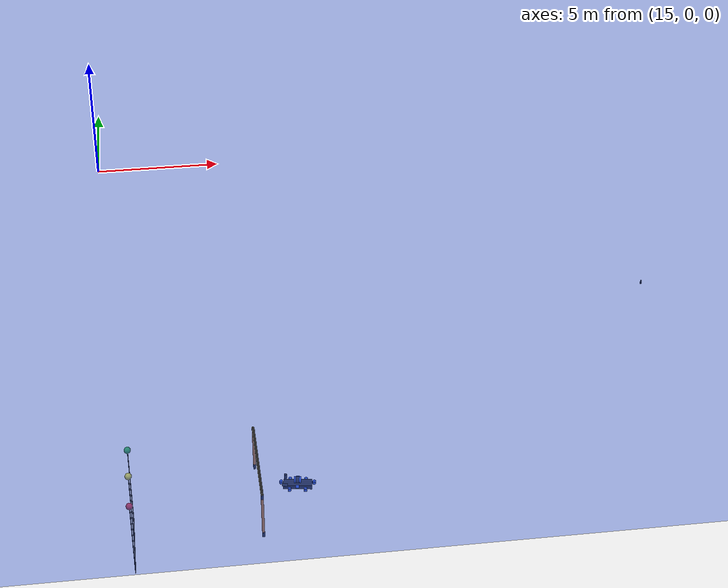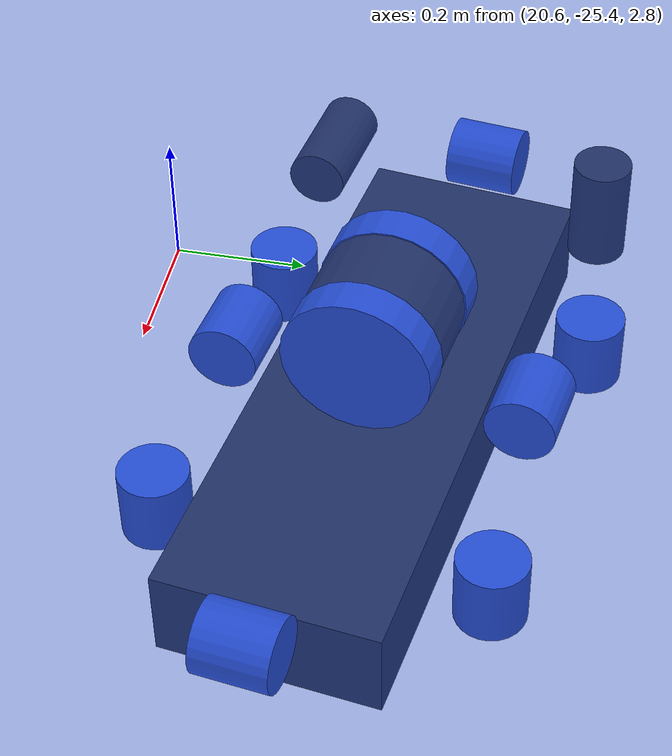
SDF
<sdf version="1.5">
 <world name="default">
  <scene>
   <ambient>0.25 0.3 1 1</ambient>
   <grid>0</grid>
   <background>0.25 0.3 1 1</background>
   <shadows>1</shadows>
  </scene>
  <light type="directional" name="sun0">
   <pose>8 -21 10 0 0.8 -2.8</pose>
   <diffuse>0.8 0.8 0.8 1</diffuse>
   <specular>0.2 0.2 0.2 1</specular>
   <attenuation>
    <range>1000</range>
    <constant>0.9</constant>
    <linear>0.01</linear>
    <quadratic>0.001</quadratic>
   </attenuation>
   <direction>-0.5 0.1 -0.9</direction>
  </light>
  <light type="directional" name="sun1">
   <pose>8 -20 10 0 0.8 0</pose>
   <diffuse>0.8 0.8 0.8 1</diffuse>
   <specular>0.2 0.2 0.2 1</specular>
   <attenuation>
    <range>1000</range>
    <constant>0.9</constant>
    <linear>0.01</linear>
    <quadratic>0.001</quadratic>
   </attenuation>
   <direction>-0.5 0.1 -0.9</direction>
  </light>
  <light type="directional" name="sun2">
   <pose>8 -19 10 0 0 0</pose>
   <diffuse>0.8 0.8 0.8 1</diffuse>
   <specular>0.2 0.2 0.2 1</specular>
   <attenuation>
    <range>1000</range>
    <constant>0.9</constant>
    <linear>0.01</linear>
    <quadratic>0.001</quadratic>
   </attenuation>
   <direction>-0.5 0.1 -0.9</direction>
  </light>
  <light type="directional" name="sun3">
   <pose>8 -19 10 1.75 0 0</pose>
   <diffuse>0.8 0.8 0.8 1</diffuse>
   <specular>0.2 0.2 0.2 1</specular>
   <attenuation>
    <range>1000</range>
    <constant>0.9</constant>
    <linear>0.01</linear>
    <quadratic>0.001</quadratic>
   </attenuation>
   <direction>-0.5 0.1 -0.9</direction>
  </light>
  <light type="directional" name="sun4">
   <pose>8 -19 10 1.75 0 2.9</pose>
   <diffuse>0.8 0.8 0.8 1</diffuse>
   <specular>0.2 0.2 0.2 1</specular>
   <attenuation>
    <range>1000</range>
    <constant>0.9</constant>
    <linear>0.01</linear>
    <quadratic>0.001</quadratic>
   </attenuation>
   <direction>-0.5 0.1 -0.9</direction>
  </light>
  <model name="ceiling_plane">
   <static>true</static>
   <pose>0 0 4.49 0 0 0</pose>
   <link name="link">
    <visual name="visual">
     <cast_shadows>false</cast_shadows>
     <geometry><box><size>90 60 .001</size></box></geometry>
     <material>
      <script><uri>file://media/materials/scripts/gazebo.material</uri><name>Gazebo/BlueTransparent</name></script>
     </material>
     <transparency>0.6</transparency>
    </visual>
   </link>
  </model>
  <model name="pinger_a">
   <static>true</static>
   <pose>37.88 -4.1 -4.9 0 0 0</pose>
   <link name="link">
    <visual name="visual">
     <geometry><cylinder><radius>0.03</radius><length>0.15</length></cylinder></geometry>
     <material>
      <script><uri>file://media/materials/scripts/gazebo.material</uri><name>Gazebo/FlatBlack</name></script>
     </material>
    </visual>
   </link>
  </model>
  <include><name>gate_side_a</name><pose>19.8 -25.7 4.5 0 0 1.575</pose><uri>model://gate</uri></include>
  <include><name>buoys</name><pose>16.1 -25.5 1.55 0 0 1.575</pose><uri>model://buoys</uri></include>
  <include><name>robosub</name><pose>21 -25 3 0 0 3</pose><uri>model://cobalt</uri></include>
 </world>
</sdf>

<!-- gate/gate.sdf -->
<sdf version='1.5'>

  <model name='gate'>
    <pose>0 0 0 0 0 0</pose>
    <self_collide> 0 </self_collide>
    <static> 1</static>

    <link name='gate_top'>
      <pose>0 0 0 0 1.5707 0</pose>
      <visual name='gate_top_vis'>
        <geometry>
          <cylinder>
            <radius>0.0381</radius>
            <length>3.05</length>
          </cylinder>
        </geometry>
        <material>
          <script>
            <uri>file://media/materials/scripts/gazebo.material</uri>
            <name>Gazebo/FlatBlack</name>
          </script>
        </material>
      </visual>
      <collision name='gate_top_collide'>
        <pose>0 0 0 0 1.5707 0</pose>
        <geometry>
          <cylinder>
            <radius>0.0381</radius>
            <length>3.05</length>
          </cylinder>
        </geometry>
      </collision>
    </link>

    <link name='gate_right'>
      <pose>1.525 0 -0.762 0 0 0</pose>
      <visual name='gate_right_vis'>
        <geometry>
          <cylinder>
            <radius>0.0381</radius>
            <length>1.21</length>
          </cylinder>
        </geometry>
        <material>
          <script>
            <uri>file://media/materials/scripts/gazebo.material</uri>
            <name>Gazebo/Orange</name>
          </script>
          <diffuse>0.6 0.3088 0.0468 1</diffuse>
        </material>
      </visual>
      <visual name='gate_right_top'>
        <pose>0 0 0.6858 0 0 0</pose>
        <geometry>
          <cylinder>
            <radius>0.0381</radius>
            <length>0.16</length>
          </cylinder>
        </geometry>
        <material>
          <script>
            <uri>file://media/materials/scripts/gazebo.material</uri>
            <name>Gazebo/FlatBlack</name>
          </script>
        </material>
      </visual>
      <visual name='gate_right_bottom'>
        <pose>0 0 -0.6858 0 0 0</pose>
        <geometry>
          <cylinder>
            <radius>0.0381</radius>
            <length>0.16</length>
          </cylinder>
        </geometry>
        <material>
          <script>
              <uri>file://media/materials/scripts/gazebo.material</uri>
              <name>Gazebo/FlatBlack</name>
          </script>
        </material>
      </visual>
      <collision name='gate_right_collide'>
        <pose>1.525 0 -0.762 0 0 0</pose>
        <geometry>
          <cylinder>
            <radius>0.0381</radius>
            <length>1.52</length>
          </cylinder>
        </geometry>
      </collision>
    </link>

    <link name='gate_left'>
      <pose>-1.525 0 -0.762 0 0 0</pose>
      <visual name='gate_left_vis'>
        <geometry>
          <cylinder>
            <radius>0.0381</radius>
            <length>1.21</length>
          </cylinder>
        </geometry>
        <material>
          <script>
            <uri>file://media/materials/scripts/gazebo.material</uri>
            <name>Gazebo/Orange</name>
          </script>
          <diffuse>0.6 0.3088 0.0468 1</diffuse>
        </material>
      </visual>
      <visual name='gate_left_top'>
        <pose>0 0 0.6858 0 0 0</pose>
        <geometry>
          <cylinder>
            <radius>0.0381</radius>
            <length>0.16</length>
          </cylinder>
        </geometry>
        <material>
          <script>
            <uri>file://media/materials/scripts/gazebo.material</uri>
            <name>Gazebo/FlatBlack</name>
          </script>
        </material>
      </visual>
      <visual name='gate_left_bottom'>
        <pose>0 0 -0.6858 0 0 0</pose>
        <geometry>
          <cylinder>
            <radius>0.0381</radius>
            <length>0.16</length>
          </cylinder>
        </geometry>
        <material>
          <script>
              <uri>file://media/materials/scripts/gazebo.material</uri>
              <name>Gazebo/FlatBlack</name>
          </script>
        </material>
      </visual>
      <collision name='gate_left_collide'>
        <pose>-1.525 0 -0.762 0 0 0</pose>
        <geometry>
          <cylinder>
            <radius>0.0381</radius>
            <length>1.52</length>
          </cylinder>
        </geometry>
      </collision>
    </link>

  </model>
</sdf>

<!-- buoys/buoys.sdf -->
<sdf version='1.5'>

  <model name='buoys'>
    <pose>0 0 0 0 0 0</pose>
    <self_collide> 0 </self_collide>
    <static> 1</static>

    <link name='red_buoy'>
      <pose>-1.2 0 2.5 0 0 0</pose>
      <visual name='red_vis'>
        <geometry>
          <sphere><radius>0.1</radius></sphere>
        </geometry>
        <material>
          <script>
            <uri>file://media/materials/scripts/gazebo.material</uri>
            <name>Gazebo/Red</name>
          </script>
          <diffuse>0.6 0 0 1</diffuse>
        </material>
      </visual>
      <collision name='red_collide'>
        <geometry>
          <sphere><radius>0.1</radius></sphere>
        </geometry>
      </collision>
    </link>
    <link name='green_buoy'>
      <pose>1.2 0 2.6 0 0 0</pose>
      <visual name='green_vis'>
        <geometry>
          <sphere><radius>0.1</radius></sphere>
        </geometry>
        <material>
          <script>
            <uri>file://media/materials/scripts/gazebo.material</uri>
            <name>Gazebo/Green</name>
          </script>
          <diffuse>0 0.6 0 1</diffuse>
        </material>
      </visual>
      <collision name='green_collide'>
        <geometry>
          <sphere><radius>0.1</radius></sphere>
        </geometry>
      </collision>
    </link>
    <link name='yellow_buoy'>
        <pose>0 0 2.6 0 0 0</pose>
      <visual name='yellow_vis'>
        <geometry>
          <sphere><radius>0.1</radius></sphere>
        </geometry>
        <material>
          <script>
            <uri>file://media/materials/scripts/gazebo.material</uri>
            <name>Gazebo/Yellow</name>
          </script>
          <diffuse>0.6 0.6 0 1</diffuse>
        </material>
      </visual>
      <collision name='yellow_collide'>
        <geometry>
          <sphere><radius>0.1</radius></sphere>
        </geometry>
      </collision>
    </link>
    <link name='bottom_rod'>
        <pose>0 0 0 0 1.5707 0</pose>
        <visual name='bottom_rod_vis'>
          <geometry>
            <cylinder>
              <radius>0.01</radius>
              <length>2.4</length>
            </cylinder>
          </geometry>
        <material>
          <script>
            <uri>file://media/materials/scripts/gazebo.material</uri>
            <name>Gazebo/FlatBlack</name>
          </script>
          <diffuse>0.3 0.3 0.3 1</diffuse>
        </material>
        </visual>
    </link>
    <link name='red_rod'>
        <pose>-1.2 0 1.2 0 0 0</pose>
        <visual name='red_rod_vis'>
          <geometry>
            <cylinder>
              <radius>0.01</radius>
              <length>2.4</length>
            </cylinder>
          </geometry>
        <material>
          <script>
            <uri>file://media/materials/scripts/gazebo.material</uri>
            <name>Gazebo/FlatBlack</name>
          </script>
          <diffuse>0.3 0.3 0.3 1</diffuse>
        </material>
        </visual>
    </link>
    <link name='green_rod'>
        <pose>0 0 1.26 0 0 0</pose>
        <visual name='green_rod_vis'>
          <geometry>
            <cylinder>
              <radius>0.01</radius>
              <length>2.5</length>
            </cylinder>
          </geometry>
        <material>
          <script>
            <uri>file://media/materials/scripts/gazebo.material</uri>
            <name>Gazebo/FlatBlack</name>
          </script>
          <diffuse>0.3 0.3 0.3 1</diffuse>
        </material>
        </visual>
    </link>
    <link name='yellow_rod'>
        <pose>1.2 0 1.26 0 0 0</pose>
        <visual name='yellow_rod_vis'>
          <geometry>
            <cylinder>
              <radius>0.01</radius>
              <length>2.5</length>
            </cylinder>
          </geometry>
        <material>
          <script>
            <uri>file://media/materials/scripts/gazebo.material</uri>
            <name>Gazebo/FlatBlack</name>
          </script>
          <diffuse>0.3 0.3 0.3 1</diffuse>
        </material>
        </visual>
    </link>

  </model>
</sdf>

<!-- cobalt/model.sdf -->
<sdf version='1.5'>

  <model name='robosub_cobalt'>
    <pose>0 0 0.0 0 0 0</pose>
    <self_collide> 0 </self_collide>

    <joint name="hull_frame" type="fixed">
        <parent>frame</parent>
        <child>hull</child>
    </joint>

    <joint name='dive_front_left_frame' type="fixed">
        <parent>frame</parent>
        <child>dive_front_left</child>
    </joint>

    <joint name='dive_front_right_frame' type="fixed">
        <parent>frame</parent>
        <child>dive_front_right</child>
    </joint>

    <joint name='dive_back_left_frame' type="fixed">
        <parent>frame</parent>
        <child>dive_back_left</child>
    </joint>

    <joint name='dive_back_right_frame' type="fixed">
        <parent>frame</parent>
        <child>dive_back_right</child>
    </joint>

    <joint name='strafe_front_frame' type="fixed">
        <parent>frame</parent>
        <child>strafe_front</child>
    </joint>

    <joint name='strafe_back_frame' type="fixed">
        <parent>frame</parent>
        <child>strafe_back</child>
    </joint>

    <joint name='forward_left_frame' type="fixed">
        <parent>frame</parent>
        <child>forward_left</child>
    </joint>

    <joint name='forward_right_frame' type="fixed">
        <parent>frame</parent>
        <child>forward_right</child>
    </joint>

    <joint name='left_camera_frame' type="fixed">
        <parent>frame</parent>
        <child>left_camera</child>
    </joint>

    <joint name='right_camera_frame' type="fixed">
        <parent>frame</parent>
        <child>right_camera</child>
    </joint>

    <joint name='bottom_camera_frame' type="fixed">
        <parent>frame</parent>
        <child>bottom_camera</child>
    </joint>

    <joint name='hydrophone_h0_frame' type="fixed">
        <parent>frame</parent>
        <child>hydrophone_h0</child>
    </joint>

    <joint name='hydrophone_hx_frame' type="fixed">
        <parent>frame</parent>
        <child>hydrophone_hx</child>
    </joint>

    <joint name='hydrophone_hy_frame' type="fixed">
        <parent>frame</parent>
        <child>hydrophone_hy</child>
    </joint>

    <joint name='hydrophone_hz_frame' type="fixed">
        <parent>frame</parent>
        <child>hydrophone_hz</child>
    </joint>

    <link name='hull'>
      <pose>0 0 .082 1.57079632679 0 1.57079632679 </pose>
      <inertial>
        <mass>10</mass>
      </inertial>

      <visual name='bulkhead_visual'>
        <geometry>
              <cylinder>
                <radius>0.1</radius>
                <length>.13</length>
              </cylinder>
        </geometry>
        <material>
            <script>
              <uri>file://media/materials/scripts/gazebo.material</uri>
              <name>Gazebo/Black</name>
            </script>
          </material>
      </visual>

      <visual name='front_ring_visual'>
      <pose>0 0 .075 0 0 0</pose>
        <geometry>
              <cylinder>
                <radius>0.102</radius>
                <length>.05</length>
              </cylinder>
        </geometry>
        <material>
            <script>
              <uri>file://media/materials/scripts/gazebo.material</uri>
              <name>Gazebo/Blue</name>
            </script>
          </material>
      </visual>
      <visual name='rear_ring_visual'>
      <pose>0 0 -.075 0 0 0</pose>
        <geometry>
              <cylinder>
                <radius>0.102</radius>
                <length>.05</length>
              </cylinder>
        </geometry>
        <material>
            <script>
              <uri>file://media/materials/scripts/gazebo.material</uri>
              <name>Gazebo/Blue</name>
            </script>
          </material>
      </visual>
      <visual name='front_tube_visual'>
      <pose>0 0 .235 0 0 0</pose>
        <geometry>
              <cylinder>
                <radius>0.1</radius>
                <length>.32</length>
              </cylinder>
        </geometry>
        <material>
            <script>
              <uri>file://media/materials/scripts/gazebo.material</uri>
              <name>Gazebo/GreyTransparent</name>
            </script>
            <diffuse>0.6 0.6 0.6 0.6</diffuse>
          </material>
      </visual>

      <visual name='rear_tube_visual'>
      <pose>0 0 -.235 0 0 0</pose>
        <geometry>
              <cylinder>
                <radius>0.1</radius>
                <length>.32</length>
              </cylinder>
        </geometry>
        <material>
            <script>
              <uri>file://media/materials/scripts/gazebo.material</uri>
              <name>Gazebo/GreyTransparent</name>
            </script>
            <diffuse>0.6 0.6 0.6 0.6</diffuse>
          </material>
      </visual>
      <collision name='hull_collision'>
        <geometry>
              <cylinder>
                <radius>0.1</radius>
                <length>.77</length>
              </cylinder>
            </geometry>
      </collision>
      <velocity_decay>
          <linear>0.002</linear>
          <angular>0.002</angular>
      </velocity_decay>
    </link>

    <link name='hydrophone_h0'>
      <pose> 0 0 0 0 0 0 </pose>
      <inertial>
        <mass> 0.001 </mass>
      </inertial>
    </link>

    <link name='hydrophone_hx'>
      <pose> 0.015 0 0 0 0 0 </pose>
      <inertial>
        <mass> 0.001 </mass>
      </inertial>
    </link>

    <link name='hydrophone_hy'>
      <pose> 0 0.015 0 0 0 0 </pose>
      <inertial>
        <mass> 0.001 </mass>
      </inertial>
    </link>

    <link name='hydrophone_hz'>
      <pose> 0 0 0.015 0 0 0 </pose>
      <inertial>
        <mass> 0.001 </mass>
      </inertial>
    </link>

    <link name='frame'>
      <pose>0 0 -0.088 0 0 0</pose>
      <inertial>
        <mass>16.5</mass>
      </inertial>

      <visual name='frame_visual'>
        <geometry>
              <box>
                <size>.85 .3 .13</size>
              </box>
            </geometry>
          <material>
            <script>
              <uri>file://media/materials/scripts/gazebo.material</uri>
              <name>Gazebo/FlatBlack</name>
            </script>
          </material>
      </visual>

      <collision name='frame_collision'>
        <geometry>
              <box>
                <size>.85 .3 .13</size>
              </box>
            </geometry>
      </collision>
      <velocity_decay>
          <linear>0.002</linear>
          <angular>0.002</angular>
      </velocity_decay>
    </link>

    <link name='dive_front_left'>
      <pose>0.235 0.23 -0.1 0 3.14159 0</pose>
      <inertial>
        <mass>0.344</mass>
      </inertial>
      <visual name='dive_front_left_visual'>
        <geometry>
          <cylinder>
            <radius>0.0485</radius>
            <length>0.101</length>
          </cylinder>
        </geometry>
      <material>
        <script>
          <uri>file://media/materials/scripts/gazebo.material</uri>
          <name>Gazebo/Blue</name>
        </script>
      </material>
      </visual>
      <collision name='dive_front_left_collision'>
        <geometry>
          <cylinder>
            <radius>0.0485</radius>
            <length>0.101</length>
          </cylinder>
        </geometry>
      </collision>
    </link>

    <link name='dive_front_right'>
      <pose>0.235 -0.23 -0.1 0 3.14159 0</pose>
      <inertial>
        <mass>0.344</mass>
      </inertial>
      <visual name='dive_front_right_visual'>
        <geometry>
          <cylinder>
            <radius>0.0485</radius>
            <length>0.101</length>
          </cylinder>
        </geometry>
      <material>
        <script>
          <uri>file://media/materials/scripts/gazebo.material</uri>
          <name>Gazebo/Blue</name>
        </script>
      </material>
      </visual>
      <collision name='dive_front_right_collision'>
        <geometry>
          <cylinder>
            <radius>0.0485</radius>
            <length>0.101</length>
          </cylinder>
        </geometry>
      </collision>
    </link>

    <link name='dive_back_left'>
      <pose>-0.235 0.23 -0.1 0 3.14159 0</pose>
      <inertial>
        <mass>0.344</mass>
      </inertial>
      <visual name='dive_back_left_visual'>
        <geometry>
          <cylinder>
            <radius>0.0485</radius>
            <length>0.101</length>
          </cylinder>
        </geometry>
      <material>
        <script>
          <uri>file://media/materials/scripts/gazebo.material</uri>
          <name>Gazebo/Blue</name>
        </script>
      </material>
      </visual>
      <collision name='dive_back_left_collision'>
        <geometry>
          <cylinder>
            <radius>0.0485</radius>
            <length>0.101</length>
          </cylinder>
        </geometry>
      </collision>
    </link>

    <link name='dive_back_right'>
      <pose>-0.235 -0.23 -0.1 0 3.14159 0</pose>
      <inertial>
        <mass>0.344</mass>
      </inertial>
      <visual name='dive_back_right_visual'>
        <geometry>
          <cylinder>
            <radius>0.0485</radius>
            <length>0.101</length>
          </cylinder>
        </geometry>
      <material>
        <script>
          <uri>file://media/materials/scripts/gazebo.material</uri>
          <name>Gazebo/Blue</name>
        </script>
      </material>
      </visual>
      <collision name='dive_back_right_collision'>
        <geometry>
          <cylinder>
            <radius>0.0485</radius>
            <length>0.101</length>
          </cylinder>
        </geometry>
      </collision>
    </link>

    <link name='strafe_front'>
      <pose>0.49 0 -0.01 -1.57079632679 0 0</pose>
      <inertial>
        <mass>0.344</mass>
      </inertial>
      <visual name='strafe_front_visual'>
        <geometry>
          <cylinder>
            <radius>0.0485</radius>
            <length>0.101</length>
          </cylinder>
        </geometry>
      <material>
        <script>
          <uri>file://media/materials/scripts/gazebo.material</uri>
          <name>Gazebo/Blue</name>
        </script>
      </material>
      </visual>
      <collision name='strafe_front_collision'>
        <geometry>
          <cylinder>
            <radius>0.0485</radius>
            <length>0.101</length>
          </cylinder>
        </geometry>
      </collision>
    </link>

    <link name='strafe_back'>
      <pose>-0.49 0 -0.01 -1.57079632679 0 0</pose>
      <inertial>
        <mass>0.344</mass>
      </inertial>
      <visual name='strafe_back_visual'>
        <geometry>
          <cylinder>
            <radius>0.0485</radius>
            <length>0.101</length>
          </cylinder>
        </geometry>
      <material>
        <script>
          <uri>file://media/materials/scripts/gazebo.material</uri>
          <name>Gazebo/Blue</name>
        </script>
      </material>
      </visual>
      <collision name='strafe_back_collision'>
        <geometry>
          <cylinder>
            <radius>0.0485</radius>
            <length>0.101</length>
          </cylinder>
        </geometry>
      </collision>
    </link>

    <link name='forward_left'>
      <pose>0 0.2075 -0.01 0 -1.57079632679 0</pose>
      <inertial>
        <mass>0.344</mass>
      </inertial>
      <visual name='forward_left_visual'>
        <geometry>
          <cylinder>
            <radius>0.0485</radius>
            <length>0.101</length>
          </cylinder>
        </geometry>
      <material>
        <script>
          <uri>file://media/materials/scripts/gazebo.material</uri>
          <name>Gazebo/Blue</name>
        </script>
      </material>
      </visual>
      <collision name='forward_left_collision'>
        <geometry>
          <cylinder>
            <radius>0.0485</radius>
            <length>0.101</length>
          </cylinder>
        </geometry>
      </collision>
    </link>

    <link name='forward_right'>
      <pose>0 -0.2075 -0.01 0 -1.57079632679 0</pose>
      <inertial>
        <mass>0.344</mass>
      </inertial>
      <visual name='forward_right_visual'>
        <geometry>
          <cylinder>
            <radius>0.0485</radius>
            <length>0.101</length>
          </cylinder>
        </geometry>
      <material>
        <script>
          <uri>file://media/materials/scripts/gazebo.material</uri>
          <name>Gazebo/Blue</name>
        </script>
      </material>
      </visual>
      <collision name='forward_right_collision'>
        <geometry>
          <cylinder>
            <radius>0.0485</radius>
            <length>0.101</length>
          </cylinder>
        </geometry>
      </collision>
    </link>

    <link name='left_camera'>
      <pose>0.37 0.20 0.04 0 1.57079632679 0</pose>
      <inertial>
        <mass>0.73</mass>
      </inertial>
      <visual name='left_camera_visual'>
        <geometry>
          <cylinder>
            <radius>0.0405</radius>
            <length>0.15</length>
          </cylinder>
        </geometry>
      <material>
        <script>
          <uri>file://media/materials/scripts/gazebo.material</uri>
          <name>Gazebo/Black</name>
        </script>
      </material>
      </visual>
      <collision name='left_camera_collision'>
        <geometry>
          <cylinder>
            <radius>0.0405</radius>
            <length>0.15</length>
          </cylinder>
        </geometry>
      </collision>
      <sensor name="left" type="wideanglecamera">
          <pose>0 0 0.14 0 -1.570796 0</pose>
          <camera>
              <horizontal_fov>3.1415</horizontal_fov>
              <image>
                  <width>1384</width>
                  <height>1032</height>
              </image>
              <clip>
                  <near>0.001</near>
                  <far>100</far>
              </clip>
              <lens>
                  <type>custom</type>
                  <custom_function>
                      <c1>685.4</c1>
                      <c2>525.2</c2>
                      <f>307.53251966606937</f>
                      <fun>tan</fun>
                  </custom_function>
                  <scale_to_hfov>true</scale_to_hfov>
                  <cutoff_angle>1.57075</cutoff_angle>
                  <env_texture_size>512</env_texture_size>
              </lens>
              <distortion>
                <k1>-.16492342967649815</k1>
                <k2>0.016187172468110342</k2>
                <k3>-0.00038951913220274415</k3>
                <p1>0</p1>
                <p2>0</p2>
                <center>0 0</center>
              </distortion>
          </camera>
          <plugin name="left_camera_controller" filename="libgazebo_ros_camera.so">
              <cameraName>left</cameraName>
              <imageTopicName>/camera/left/image_raw</imageTopicName>
          </plugin>
          <always_on>1</always_on>
          <update_rate>5</update_rate>
      </sensor>
    </link>

    <link name='right_camera'>
      <pose>0.37 -0.20 0.04 0 3.1415926 0</pose>
      <inertial>
        <mass>0.73</mass>
      </inertial>
      <visual name='right_camera_visual'>
        <geometry>
          <cylinder>
            <radius>0.0405</radius>
            <length>0.15</length>
          </cylinder>
        </geometry>
      <material>
        <script>
          <uri>file://media/materials/scripts/gazebo.material</uri>
          <name>Gazebo/Black</name>
        </script>
      </material>
      </visual>
      <collision name='right_camera_collision'>
        <geometry>
          <cylinder>
            <radius>0.0405</radius>
            <length>0.15</length>
          </cylinder>
        </geometry>
      </collision>
      <sensor name="right" type="wideanglecamera">
          <pose>0 0 0.14 0 -1.570796 0</pose>
          <camera>
              <horizontal_fov>3.1415</horizontal_fov>
              <image>
                  <width>1384</width>
                  <height>1032</height>
              </image>
              <clip>
                  <near>0.1</near>
                  <far>100</far>
              </clip>
              <lens>
                  <type>custom</type>
                  <custom_function>
                      <c1>667.1</c1>
                      <c2>536.7</c2>
                      <f>317.86251966606937</f>
                      <fun>tan</fun>
                  </custom_function>
                  <scale_to_hfov>true</scale_to_hfov>
                  <cutoff_angle>1.57075</cutoff_angle>
                  <env_texture_size>512</env_texture_size>
              </lens>
              <distortion>
                <k1>-.16492342967649815</k1>
                <k2>0.016187172468110342</k2>
                <k3>-0.00038951913220274415</k3>
                <p1>0</p1>
                <p2>0</p2>
                <center>0 0</center>
              </distortion>
          </camera>
          <plugin name="right_camera_controller" filename="libgazebo_ros_camera.so">
              <cameraName>right</cameraName>
              <imageTopicName>/camera/right/image_raw</imageTopicName>
          </plugin>
          <always_on>1</always_on>
          <update_rate>5</update_rate>
      </sensor>
    </link>

    <link name='bottom_camera'>
      <pose>0 0 -0.1 0 3.14159265358 0</pose>
      <inertial>
        <mass>0.73</mass>
      </inertial>
      <visual name='bottom_camera_visual'>
        <geometry>
          <cylinder>
            <radius>0.0405</radius>
            <length>0.15</length>
          </cylinder>
        </geometry>
      <material>
        <script>
          <uri>file://media/materials/scripts/gazebo.material</uri>
          <name>Gazebo/Black</name>
        </script>
      </material>
      </visual>
      <collision name='bottom_camera_collision'>
        <geometry>
          <cylinder>
            <radius>0.0405</radius>
            <length>0.15</length>
          </cylinder>
        </geometry>
      </collision>
      <sensor name="bottom" type="wideanglecamera">
          <pose>0 0 0.14 0 -1.570796 0</pose>
          <camera>
              <horizontal_fov>3.1415</horizontal_fov>
              <image>
                  <width>1384</width>
                  <height>1032</height>
              </image>
              <clip>
                  <near>0.1</near>
                  <far>100</far>
              </clip>
              <lens>
                  <type>custom</type>
                  <custom_function>
                      <c1>691.5</c1>
                      <c2>515.5</c2>
                      <f>341.43251966606937</f>
                      <fun>tan</fun>
                  </custom_function>
                  <scale_to_hfov>true</scale_to_hfov>
                  <cutoff_angle>1.57075</cutoff_angle>
                  <env_texture_size>512</env_texture_size>
              </lens>
              <distortion>
                <k1>-.16492342967649815</k1>
                <k2>0.016187172468110342</k2>
                <k3>-0.00038951913220274415</k3>
                <p1>0</p1>
                <p2>0</p2>
                <center>0 0</center>
              </distortion>
          </camera>
          <plugin name="bottom_camera_controller" filename="libgazebo_ros_camera.so">
              <cameraName>bottom</cameraName>
              <imageTopicName>/camera/bottom/image_raw</imageTopicName>
          </plugin>
          <always_on>1</always_on>
          <update_rate>5</update_rate>
      </sensor>
    </link>

    <allow_auto_disable>0</allow_auto_disable>

    <plugin name="thruster" filename="libthruster.so"/>

    <plugin name="buoyancy_improved" filename="libbuoyancy_improved.so">
      <fluid_density>1000</fluid_density>
      <link name="frame">
        <volume>0.0026</volume>
      </link>

      <!-- thrusters -->
      <link name="dive_back_right">
        <volume>0.000334</volume>
      </link>
      <link name="dive_back_left">
        <volume>0.000334</volume>
      </link>
      <link name="dive_front_right">
        <volume>0.000334</volume>
      </link>
      <link name="dive_front_left">
        <volume>0.000334</volume>
      </link>
      <link name="strafe_front">
        <volume>0.000334</volume>
      </link>
      <link name="strafe_back">
        <volume>0.000334</volume>
      </link>
      <link name="forward_right">
        <volume>0.000334</volume>
      </link>
      <link name="forward_left">
        <volume>0.000334</volume>
      </link>

    </plugin>
    <plugin name="imu" filename="libgazebo_ros_imu.so">
      <alwaysOn>true</alwaysOn>
      <bodyName>frame</bodyName>
      <topicName>gazebo/rs_imu</topicName>
      <serviceName>gazebo/rs_imu_service</serviceName>
      <gaussianNoise>0.0</gaussianNoise>
      <updateRate>20.0</updateRate>
    </plugin>
   <plugin name="marker_dropper" filename="libmarkerdrop.so"/>
  </model>
</sdf>
